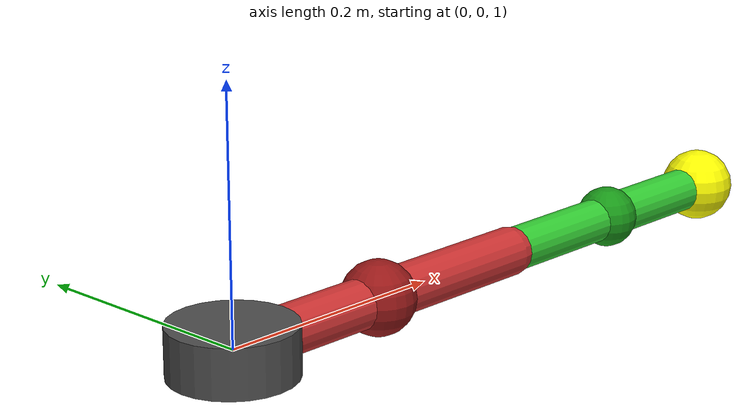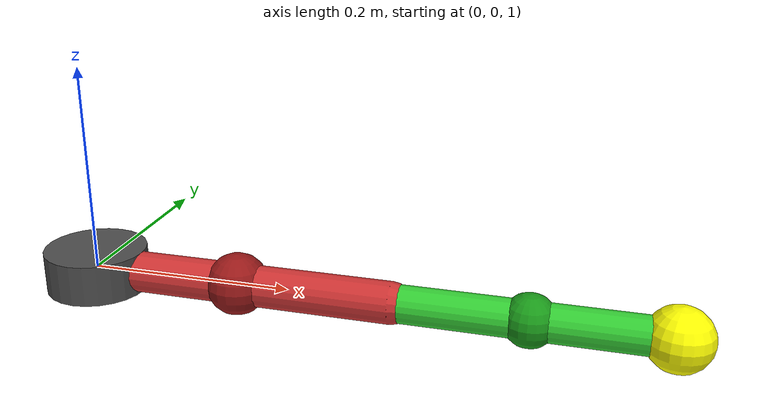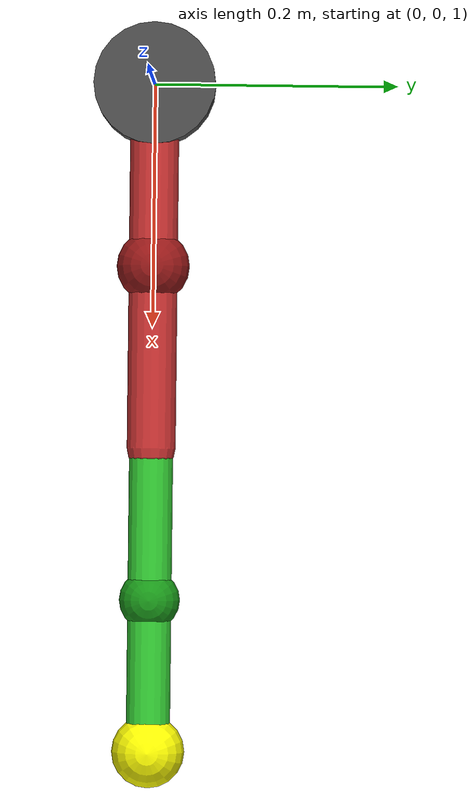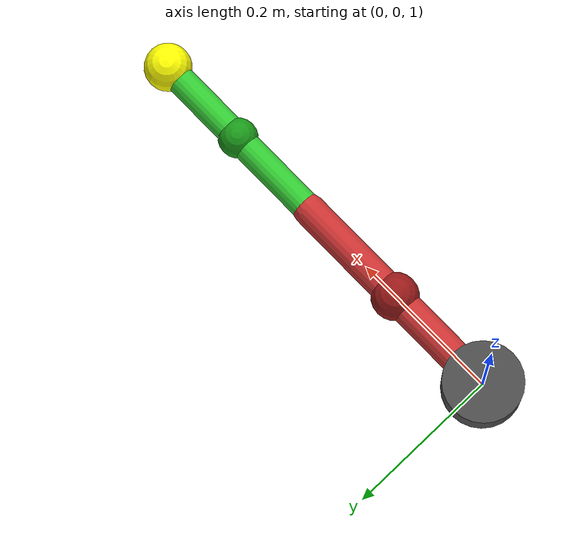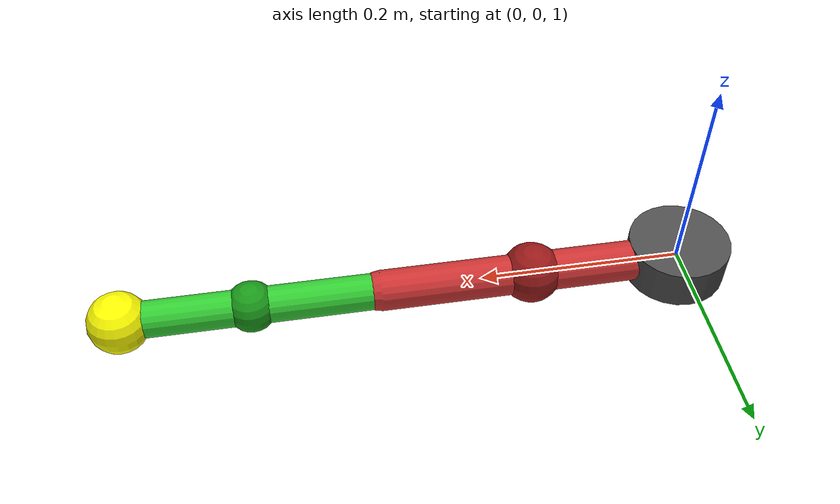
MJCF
<mujoco model="two_link_arm">
  <compiler angle="radian"/>

  <option timestep="0.002" gravity="0 0 -9.81"/>

  <default>
    <joint damping="0.5" armature="0.01"/>
    <geom type="capsule" rgba="0.8 0.6 0.4 1" contype="1" conaffinity="1"/>
  </default>

  <worldbody>
    <body name="base" pos="0 0 1.0">
      <geom type="cylinder" size="0.05 0.02" rgba="0.3 0.3 0.3 1"/>

      <body name="link1" pos="0 0 0">
        <joint name="shoulder" type="hinge" axis="0 1 0" range="-3.14 3.14"/>
        <geom fromto="0 0 0 0.3 0 0" size="0.02" rgba="0.8 0.2 0.2 1"/>
        <geom type="sphere" pos="0.15 0 0" size="0.03" rgba="0.6 0.1 0.1 1" mass="0.5"/>

        <body name="link2" pos="0.3 0 0">
          <joint name="elbow" type="hinge" axis="0 1 0" range="-3.14 3.14"/>
          <geom fromto="0 0 0 0.25 0 0" size="0.018" rgba="0.2 0.8 0.2 1"/>
          <geom type="sphere" pos="0.125 0 0" size="0.025" rgba="0.1 0.6 0.1 1" mass="0.3"/>

          <body name="end_effector" pos="0.25 0 0">
            <geom type="sphere" size="0.03" rgba="1 1 0 1"/>
          </body>
        </body>
      </body>
    </body>
  </worldbody>

  <actuator>
    <general name="shoulder_torque" joint="shoulder" dyntype="none" biastype="none" gainprm="1" ctrllimited="true" ctrlrange="-20 20"/>
    <general name="elbow_torque" joint="elbow" dyntype="none" biastype="none" gainprm="1" ctrllimited="true" ctrlrange="-20 20"/>
  </actuator>
</mujoco>
